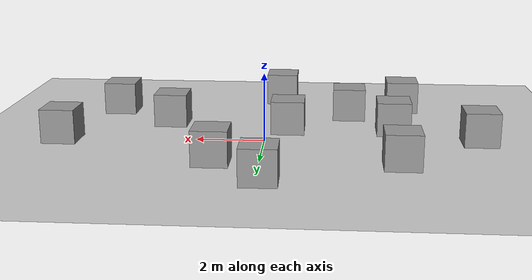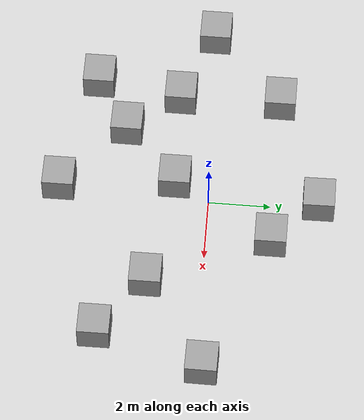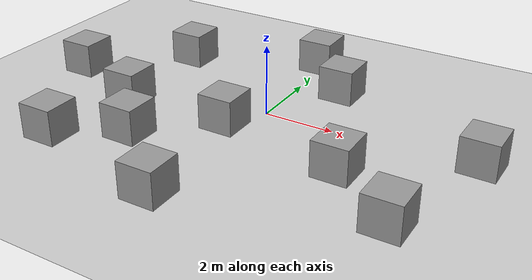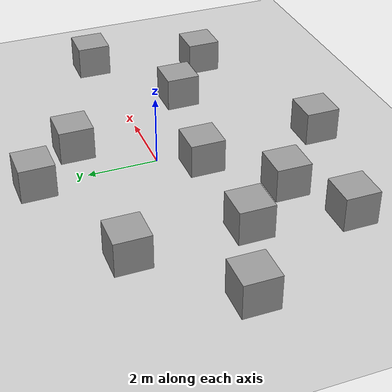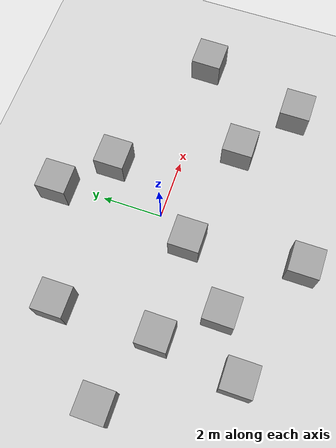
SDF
<sdf version="1.4">
 <world name="default">
  <light name="sun" type="directional">
   <pose>0 0 10 0 -0 0</pose>
   <diffuse>0.8 0.8 0.8 1</diffuse>
   <specular>0.2 0.2 0.2 1</specular>
   <attenuation>
    <range>1000</range>
    <constant>0.9</constant>
    <linear>0.01</linear>
    <quadratic>0.001</quadratic>
   </attenuation>
   <direction>-0.5 0.1 -0.9</direction>
  </light>
  <model name="mygroundplane">
   <static>1</static>
   <link name="link">
    <collision name="collision">
     <geometry><plane><normal>0 0 1</normal><size>100 100</size></plane></geometry>
     <surface><friction><ode><mu>100</mu><mu2>50</mu2></ode></friction></surface>
    </collision>
    <visual name="visual">
     <cast_shadows>0</cast_shadows>
     <geometry><plane><normal>0 0 1</normal><size>50 50</size></plane></geometry>
     <material>
      <script>
       <uri>model://mygroundplane/materials/scripts/mygroundplane.material</uri>
       <uri>model://mygroundplane/materials/scripts</uri>
       <uri>model://mygroundplane/materials/textures</uri>
       <name>MyGroundPlane/Image</name>
      </script>
     </material>
    </visual>
    <velocity_decay><linear>0</linear><angular>0</angular></velocity_decay>
   </link>
  </model>
  <physics type="ode">
   <max_step_size>0.001</max_step_size>
   <real_time_factor>1</real_time_factor>
   <real_time_update_rate>1000</real_time_update_rate>
   <gravity>0 0 -9.8</gravity>
  </physics>
  <scene><ambient>0.4 0.4 0.4 1</ambient><background>0.7 0.7 0.7 1</background><shadows>1</shadows></scene>
  <spherical_coordinates>
   <surface_model>EARTH_WGS84</surface_model>
   <latitude_deg>0</latitude_deg>
   <longitude_deg>0</longitude_deg>
   <elevation>0</elevation>
   <heading_deg>0</heading_deg>
  </spherical_coordinates>
  <model name="unit_box_1">
   <pose>-0.125296 3.52289 0.498248 3e-06 0.00032 0.009663</pose>
   <link name="link">
    <inertial>
     <mass>1</mass>
     <inertia><ixx>1</ixx><ixy>0</ixy><ixz>0</ixz><iyy>1</iyy><iyz>0</iyz><izz>1</izz></inertia>
    </inertial>
    <collision name="collision"><geometry><box><size>10.9669 1 1</size></box></geometry></collision>
    <visual name="visual">
     <geometry><box><size>1 1 1</size></box></geometry>
     <material>
      <script><uri>file://media/materials/scripts/gazebo.material</uri><name>Gazebo/Grey</name></script>
     </material>
    </visual>
    <velocity_decay><linear>0</linear><angular>0</angular></velocity_decay>
   </link>
   <static>0</static>
  </model>
  <model name="unit_box_2">
   <pose>-6.20893 -0.199375 0.499439 0.000133 -0 -0.002536</pose>
   <link name="link">
    <inertial>
     <mass>1</mass>
     <inertia><ixx>1</ixx><ixy>0</ixy><ixz>0</ixz><iyy>1</iyy><iyz>0</iyz><izz>1</izz></inertia>
    </inertial>
    <collision name="collision"><geometry><box><size>1 8.43415 1</size></box></geometry></collision>
    <visual name="visual">
     <geometry><box><size>1 1 1</size></box></geometry>
     <material>
      <script><uri>file://media/materials/scripts/gazebo.material</uri><name>Gazebo/Grey</name></script>
     </material>
    </visual>
    <velocity_decay><linear>0</linear><angular>0</angular></velocity_decay>
   </link>
   <static>0</static>
  </model>
  <model name="unit_box_3">
   <pose>-3.78836 -1.17111 0.499996 4e-06 -0 -0.004472</pose>
   <link name="link">
    <inertial>
     <mass>1</mass>
     <inertia><ixx>1</ixx><ixy>0</ixy><ixz>0</ixz><iyy>1</iyy><iyz>0</iyz><izz>1</izz></inertia>
    </inertial>
    <collision name="collision"><geometry><box><size>1.69327 1.90169 1</size></box></geometry></collision>
    <visual name="visual">
     <geometry><box><size>1 1 1</size></box></geometry>
     <material>
      <script><uri>file://media/materials/scripts/gazebo.material</uri><name>Gazebo/Grey</name></script>
     </material>
    </visual>
    <velocity_decay><linear>0</linear><angular>0</angular></velocity_decay>
   </link>
   <static>0</static>
  </model>
  <model name="unit_box_4">
   <pose>-2.49092 -2.81907 0.499905 -5.29396e-23 -3.3e-05 -0.008404</pose>
   <link name="link">
    <inertial>
     <mass>1</mass>
     <inertia><ixx>1</ixx><ixy>0</ixy><ixz>0</ixz><iyy>1</iyy><iyz>0</iyz><izz>1</izz></inertia>
    </inertial>
    <collision name="collision"><geometry><box><size>5.73274 1.22941 1</size></box></geometry></collision>
    <visual name="visual">
     <geometry><box><size>1 1 1</size></box></geometry>
     <material>
      <script><uri>file://media/materials/scripts/gazebo.material</uri><name>Gazebo/Grey</name></script>
     </material>
    </visual>
    <velocity_decay><linear>0</linear><angular>0</angular></velocity_decay>
   </link>
   <static>0</static>
  </model>
  <model name="unit_box_5">
   <pose>-0.626782 -1.12216 0.499996 -1.61559e-27 -4e-06 -2e-06</pose>
   <link name="link">
    <inertial>
     <mass>1</mass>
     <inertia><ixx>1</ixx><ixy>0</ixy><ixz>0</ixz><iyy>1</iyy><iyz>0</iyz><izz>1</izz></inertia>
    </inertial>
    <collision name="collision"><geometry><box><size>1.82368 2.04375 1</size></box></geometry></collision>
    <visual name="visual">
     <geometry><box><size>1 1 1</size></box></geometry>
     <material>
      <script><uri>file://media/materials/scripts/gazebo.material</uri><name>Gazebo/Grey</name></script>
     </material>
    </visual>
    <velocity_decay><linear>0</linear><angular>0</angular></velocity_decay>
   </link>
   <static>0</static>
  </model>
  <model name="unit_box_6">
   <pose>-3.81358 2.07475 0.5 0 -0 0</pose>
   <link name="link">
    <inertial>
     <mass>1</mass>
     <inertia><ixx>1</ixx><ixy>0</ixy><ixz>0</ixz><iyy>1</iyy><iyz>0</iyz><izz>1</izz></inertia>
    </inertial>
    <collision name="collision"><geometry><box><size>1.51928 1.63462 1</size></box></geometry></collision>
    <visual name="visual">
     <geometry><box><size>1 1 1</size></box></geometry>
     <material>
      <script><uri>file://media/materials/scripts/gazebo.material</uri><name>Gazebo/Grey</name></script>
     </material>
    </visual>
    <velocity_decay><linear>0</linear><angular>0</angular></velocity_decay>
   </link>
   <static>0</static>
  </model>
  <model name="unit_box_7">
   <pose>5.91911 0.228069 0.499636 9.5e-05 -0 -0.012765</pose>
   <link name="link">
    <inertial>
     <mass>1</mass>
     <inertia><ixx>1</ixx><ixy>0</ixy><ixz>0</ixz><iyy>1</iyy><iyz>0</iyz><izz>1</izz></inertia>
    </inertial>
    <collision name="collision"><geometry><box><size>1 7.65183 1</size></box></geometry></collision>
    <visual name="visual">
     <geometry><box><size>1 1 1</size></box></geometry>
     <material>
      <script><uri>file://media/materials/scripts/gazebo.material</uri><name>Gazebo/Grey</name></script>
     </material>
    </visual>
    <velocity_decay><linear>0</linear><angular>0</angular></velocity_decay>
   </link>
   <static>0</static>
  </model>
  <model name="unit_box_8">
   <pose>-4.22919 -3.88296 0.5 0 -0 0</pose>
   <link name="link">
    <inertial>
     <mass>1</mass>
     <inertia><ixx>1</ixx><ixy>0</ixy><ixz>0</ixz><iyy>1</iyy><iyz>0</iyz><izz>1</izz></inertia>
    </inertial>
    <collision name="collision"><geometry><box><size>2.44416 0.842637 1</size></box></geometry></collision>
    <visual name="visual">
     <geometry><box><size>1 1 1</size></box></geometry>
     <material>
      <script><uri>file://media/materials/scripts/gazebo.material</uri><name>Gazebo/Grey</name></script>
     </material>
    </visual>
    <velocity_decay><linear>0</linear><angular>0</angular></velocity_decay>
   </link>
   <static>0</static>
  </model>
  <model name="unit_box_9">
   <pose>1.2812 2.07383 0.499887 0 3.8e-05 -4e-06</pose>
   <link name="link">
    <inertial>
     <mass>1</mass>
     <inertia><ixx>1</ixx><ixy>0</ixy><ixz>0</ixz><iyy>1</iyy><iyz>0</iyz><izz>1</izz></inertia>
    </inertial>
    <collision name="collision"><geometry><box><size>5.94214 1.73038 1</size></box></geometry></collision>
    <visual name="visual">
     <geometry><box><size>1 1 1</size></box></geometry>
     <material>
      <script><uri>file://media/materials/scripts/gazebo.material</uri><name>Gazebo/Grey</name></script>
     </material>
    </visual>
    <velocity_decay><linear>0</linear><angular>0</angular></velocity_decay>
   </link>
   <static>0</static>
  </model>
  <model name="unit_box_10">
   <pose>3 -1.7571 0.5 0 -0 0</pose>
   <link name="link">
    <inertial>
     <mass>1</mass>
     <inertia><ixx>1</ixx><ixy>0</ixy><ixz>0</ixz><iyy>1</iyy><iyz>0</iyz><izz>1</izz></inertia>
    </inertial>
    <collision name="collision"><geometry><box><size>2.93222 3.14032 1</size></box></geometry></collision>
    <visual name="visual">
     <geometry><box><size>1 1 1</size></box></geometry>
     <material>
      <script><uri>file://media/materials/scripts/gazebo.material</uri><name>Gazebo/Grey</name></script>
     </material>
    </visual>
    <velocity_decay><linear>0</linear><angular>0</angular></velocity_decay>
   </link>
   <static>0</static>
  </model>
  <model name="unit_box_11">
   <pose>4.90913 -3.18987 0.5 0 -0 6.7e-05</pose>
   <link name="link">
    <inertial>
     <mass>1</mass>
     <inertia><ixx>1</ixx><ixy>0</ixy><ixz>0</ixz><iyy>1</iyy><iyz>0</iyz><izz>1</izz></inertia>
    </inertial>
    <collision name="collision"><geometry><box><size>0.82402 2.19748 1</size></box></geometry></collision>
    <visual name="visual">
     <geometry><box><size>1 1 1</size></box></geometry>
     <material>
      <script><uri>file://media/materials/scripts/gazebo.material</uri><name>Gazebo/Grey</name></script>
     </material>
    </visual>
    <velocity_decay><linear>0</linear><angular>0</angular></velocity_decay>
   </link>
   <static>0</static>
  </model>
  <model name="unit_box_12">
   <pose>-0.273975 -4.82171 0.5 0 -0 0</pose>
   <link name="link">
    <inertial>
     <mass>1</mass>
     <inertia><ixx>1</ixx><ixy>0</ixy><ixz>0</ixz><iyy>1</iyy><iyz>0</iyz><izz>1</izz></inertia>
    </inertial>
    <collision name="collision"><geometry><box><size>10.4185 1 1</size></box></geometry></collision>
    <visual name="visual">
     <geometry><box><size>1 1 1</size></box></geometry>
     <material>
      <script><uri>file://media/materials/scripts/gazebo.material</uri><name>Gazebo/Grey</name></script>
     </material>
    </visual>
    <velocity_decay><linear>0</linear><angular>0</angular></velocity_decay>
   </link>
   <static>0</static>
  </model>
 </world>
</sdf>
